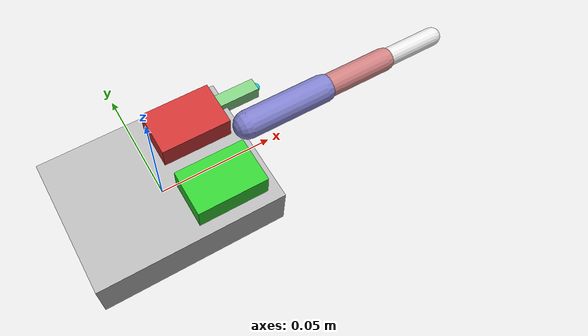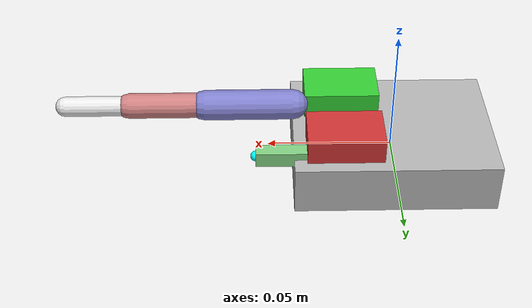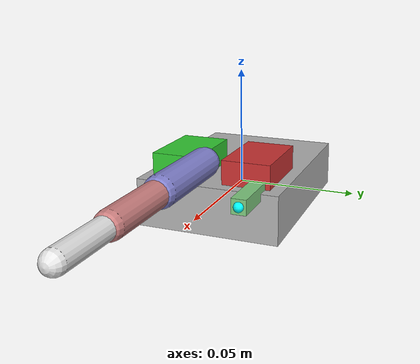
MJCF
<mujoco model="finger_simple">
  <compiler angle="radian" meshdir="meshes" autolimits="true"/>
  <option gravity="0 0 -9.81" timestep="0.001"/>

  <default>
    <!-- 适中的阻尼参数 -->
    <joint damping="0.3" armature="0.005" frictionloss="0.01"/>
    <geom contype="1" conaffinity="1" margin="0.002" solref="0.005 1" solimp="0.9 0.95 0.001"/>
    <position ctrllimited="true" ctrlrange="-1.57 1.57" kp="20"/>
  </default>

  <worldbody>
    <!-- 舵机框架基座 - 使用简单box -->
    <body name="base" pos="0 0 0">
      <geom name="base_geom" type="box" size="0.04 0.03 0.01" density="2700" rgba="0.7 0.7 0.7 1"/>

      <!-- 舵机1 - 使用cylinder + box组合 -->
      <body name="servo1" pos="0.02 0.015 0.01">
        <!-- 舵机主体 -->
        <geom name="servo1_body" type="box" size="0.015 0.01 0.01" density="1500" rgba="0.8 0.2 0.2 1"/>
        <!-- 舵机输出轴 -->
        <geom name="servo1_shaft" type="cylinder" size="0.003 0.008" density="2700" rgba="0.6 0.1 0.1 1"/>
        <joint name="j_servo1" type="hinge" axis="0 1 0" pos="0 0 0" range="-1.57 1.57"/>
        <site name="s_servo1_out" pos="0.008 0 0" size="0.002" rgba="1 0 0 1"/>
      </body>

      <!-- 舵机2 - 使用cylinder + box组合 -->
      <body name="servo2" pos="0.02 -0.015 0.01">
        <!-- 舵机主体 -->
        <geom name="servo2_body" type="box" size="0.015 0.01 0.01" density="1500" rgba="0.2 0.8 0.2 1"/>
        <!-- 舵机输出轴 -->
        <geom name="servo2_shaft" type="cylinder" size="0.003 0.008" density="2700" rgba="0.1 0.6 0.1 1"/>
        <joint name="j_servo2" type="hinge" axis="0 1 0" pos="0 0 0" range="-1.57 1.57"/>
        <site name="s_servo2_out" pos="0.008 0 0" size="0.002" rgba="0 1 0 1"/>
      </body>

      <!-- 指转部件（基节）- 使用capsule -->
      <body name="link_base" pos="0.04 0 0.02">
        <geom name="link_base_geom" type="capsule" fromto="0 0 0 0.035 0 0" size="0.006" density="1100" rgba="0.5 0.5 0.8 1"/>
        <joint name="j_base" type="hinge" axis="0 1 0" pos="0 0 0" range="-1.2 1.2"/>
        <site name="s_base_tip" pos="0.035 0 0" size="0.002" rgba="0 0 1 1"/>

        <!-- 指柱部件（中节）- 使用capsule -->
        <body name="link_mid" pos="0.035 0 0">
          <geom name="link_mid_geom" type="capsule" fromto="0 0 0 0.03 0 0" size="0.005" density="1100" rgba="0.8 0.5 0.5 1"/>
          <joint name="j_mid" type="hinge" axis="0 1 0" pos="0 0 0" range="-1.2 1.2"/>
          <site name="s_mid_tip" pos="0.03 0 0" size="0.002" rgba="1 0 1 1"/>

          <!-- 指尖部件（末节）- 使用capsule -->
          <body name="link_tip" pos="0.03 0 0">
            <geom name="link_tip_geom" type="capsule" fromto="0 0 0 0.025 0 0" size="0.004" density="1100" rgba="0.9 0.9 0.9 1"/>
            <joint name="j_tip" type="hinge" axis="0 1 0" pos="0 0 0" range="-1.2 1.2"/>
            <site name="s_fingertip" pos="0.025 0 0" size="0.002" rgba="1 1 0 1"/>
          </body>
        </body>
      </body>

      <!-- 指传动部件 - 使用box -->
      <body name="link_trans" pos="0.04 0.02 0.01">
        <geom name="link_trans_geom" type="box" size="0.015 0.003 0.003" density="1100" rgba="0.5 0.8 0.5 1"/>
        <joint name="j_trans" type="hinge" axis="0 1 0" pos="0 0 0" range="-1.0 1.0"/>
        <site name="s_trans_output" pos="0.015 0 0" size="0.002" rgba="0 1 1 1"/>
      </body>
    </body>
  </worldbody>

  <!-- 执行器配置 -->
  <actuator>
    <!-- 舵机执行器 -->
    <position name="a_servo1" joint="j_servo1" kp="20"/>
    <position name="a_servo2" joint="j_servo2" kp="20"/>

    <!-- 指传动执行器 -->
    <position name="a_trans1" joint="j_trans" kp="15"/>

    <!-- 指节执行器 - 用于测试 -->
    <position name="a_base" joint="j_base" kp="15"/>
    <position name="a_mid" joint="j_mid" kp="12"/>
    <position name="a_tip" joint="j_tip" kp="10"/>
  </actuator>

  <!-- 传感器配置 -->
  <sensor>
    <!-- 关节位置传感器 -->
    <jointpos joint="j_servo1" name="servo1_pos"/>
    <jointpos joint="j_servo2" name="servo2_pos"/>
    <jointpos joint="j_base" name="base_pos"/>
    <jointpos joint="j_mid" name="mid_pos"/>
    <jointpos joint="j_tip" name="tip_pos"/>
    <jointpos joint="j_trans" name="trans_pos"/>

    <!-- 关节速度传感器 -->
    <jointvel joint="j_servo1" name="servo1_vel"/>
    <jointvel joint="j_servo2" name="servo2_vel"/>
    <jointvel joint="j_base" name="base_vel"/>
    <jointvel joint="j_mid" name="mid_vel"/>
    <jointvel joint="j_tip" name="tip_vel"/>
    <jointvel joint="j_trans" name="trans_vel"/>

    <!-- 指尖力传感器 -->
    <force site="s_fingertip" name="fingertip_force"/>
    <torque site="s_fingertip" name="fingertip_torque"/>
  </sensor>

  <!-- 可视化设置 -->
  <visual>
    <global azimuth="120" elevation="-20"/>
    <headlight ambient="0.4 0.4 0.4" diffuse="0.8 0.8 0.8" specular="0.3 0.3 0.3"/>
  </visual>
</mujoco>
